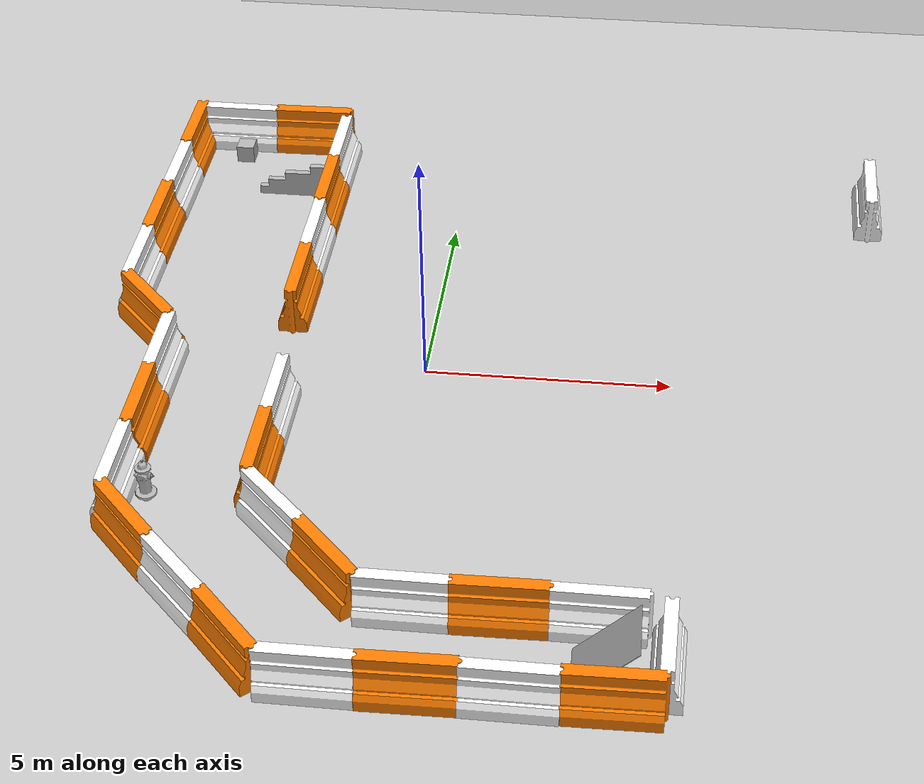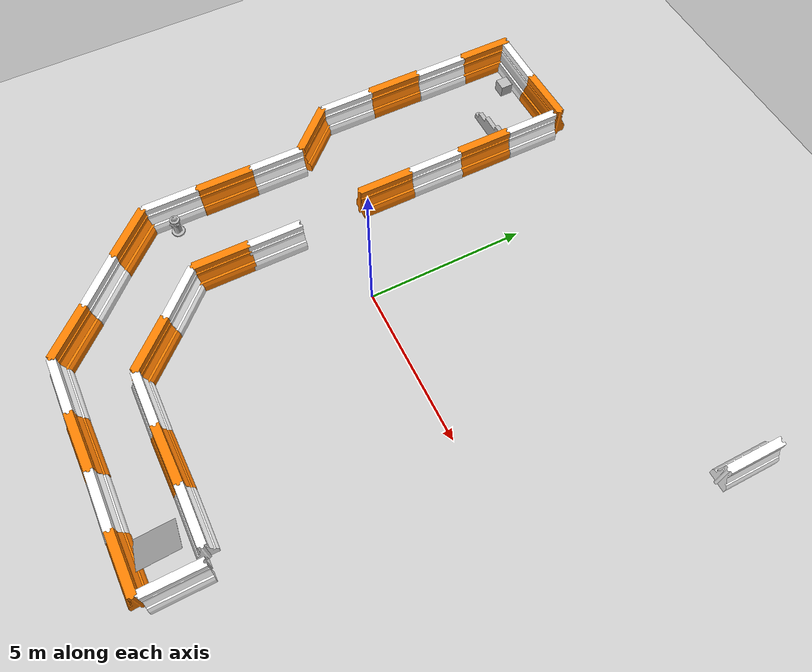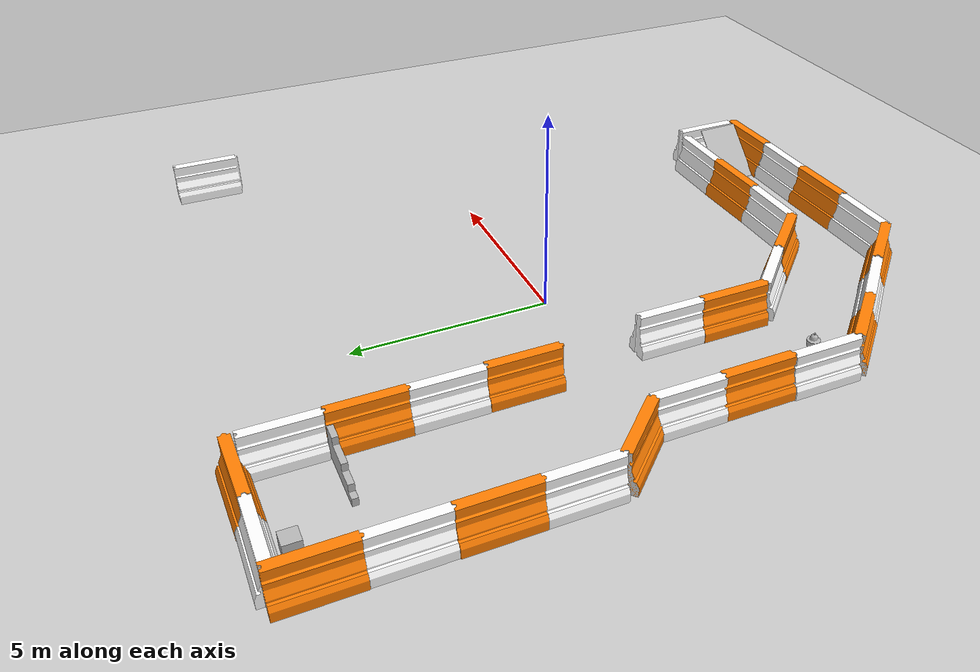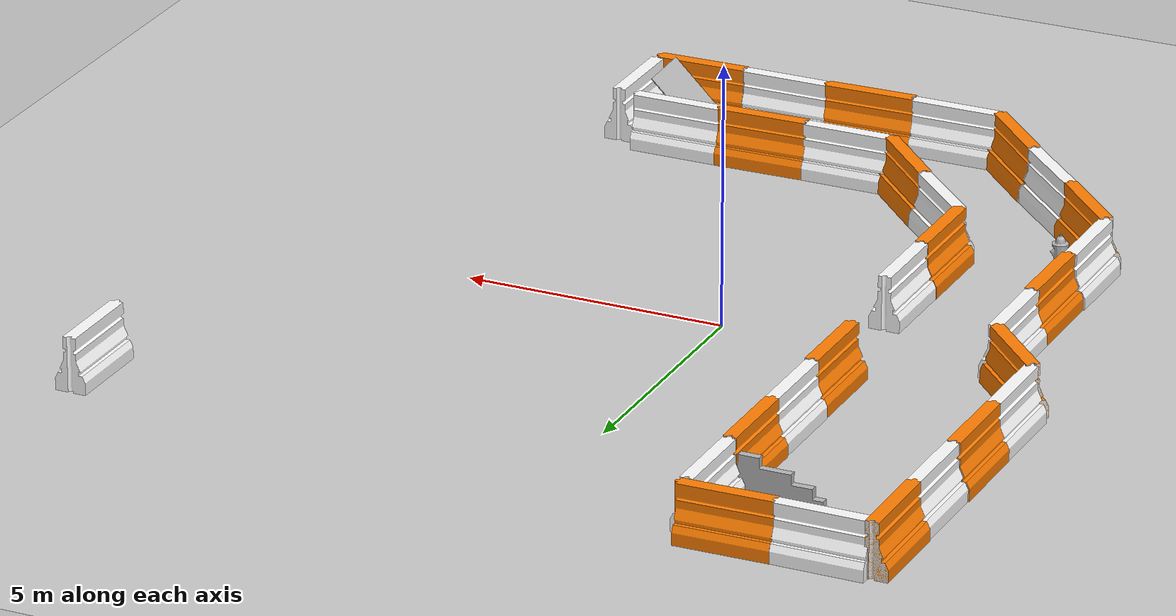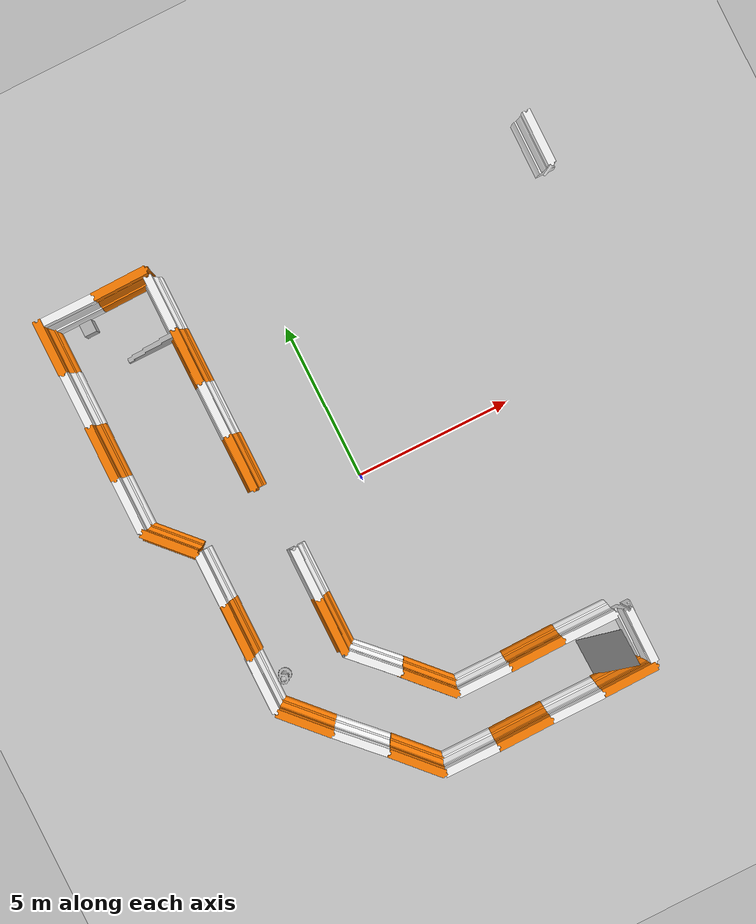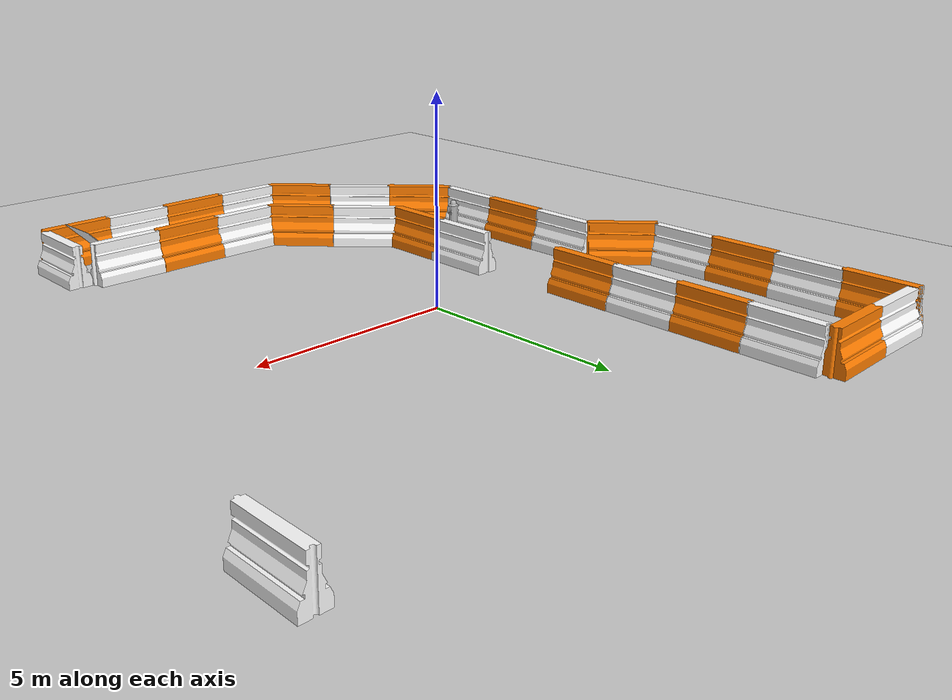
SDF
<sdf version="1.6">
 <world name="default">
  <light name="sun" type="directional">
   <pose>0 0 10 0 -0 0</pose>
   <diffuse>0.8 0.8 0.8 1</diffuse>
   <specular>0.1 0.1 0.1 1</specular>
   <attenuation>
    <range>1000</range>
    <constant>0.9</constant>
    <linear>0.01</linear>
    <quadratic>0.001</quadratic>
   </attenuation>
   <direction>-0.5 0.5 -1</direction>
  </light>
  <model name="ground_plane">
   <static>1</static>
   <link name="link">
    <collision name="collision">
     <geometry><plane><normal>0 0 1</normal><size>100 100</size></plane></geometry>
     <surface><friction><ode><mu>100</mu><mu2>50</mu2></ode></friction></surface>
    </collision>
    <visual name="visual">
     <cast_shadows>0</cast_shadows>
     <geometry><plane><normal>0 0 1</normal><size>100 100</size></plane></geometry>
     <material>
      <script><uri>file://media/materials/scripts/gazebo.material</uri><name>Gazebo/Grey</name></script>
     </material>
    </visual>
   </link>
  </model>
  <gravity>0 0 -9.8</gravity>
  <magnetic_field>6e-06 2.3e-05 -4.2e-05</magnetic_field>
  <atmosphere type="adiabatic"/>
  <physics name="default_physics" default="0" type="ode">
   <max_step_size>0.001</max_step_size>
   <real_time_factor>1</real_time_factor>
   <real_time_update_rate>1000</real_time_update_rate>
  </physics>
  <scene><ambient>0.4 0.4 0.4 1</ambient><background>0.7 0.7 0.7 1</background><shadows>1</shadows></scene>
  <spherical_coordinates>
   <surface_model>EARTH_WGS84</surface_model>
   <latitude_deg>0</latitude_deg>
   <longitude_deg>0</longitude_deg>
   <elevation>0</elevation>
   <heading_deg>0</heading_deg>
  </spherical_coordinates>
  <model name="drc_practice_white_jersey_barrier">
   <static>1</static>
   <link name="link">
    <visual name="visual">
     <geometry>
      <mesh>
       <uri>model://drc_practice_white_jersey_barrier/meshes/jersey_barrier.dae</uri>
       <scale>1 1 1</scale>
      </mesh>
     </geometry>
    </visual>
    <collision name="collision">
     <geometry>
      <mesh>
       <uri>model://drc_practice_white_jersey_barrier/meshes/jersey_barrier.dae</uri>
       <scale>1 1 1</scale>
      </mesh>
     </geometry>
    </collision>
   </link>
   <pose>9.15124 6.53092 0 0 -0 0</pose>
  </model>
  <model name="drc_practice_organge_jersey_barrier">
   <static>1</static>
   <link name="link">
    <visual name="visual">
     <geometry>
      <mesh>
       <uri>model://drc_practice_orange_jersey_barrier/meshes/jersey_barrier.dae</uri>
       <scale>1 1 1</scale>
      </mesh>
     </geometry>
    </visual>
    <collision name="collision">
     <geometry>
      <mesh>
       <uri>model://drc_practice_orange_jersey_barrier/meshes/jersey_barrier.dae</uri>
       <scale>1 1 1</scale>
      </mesh>
     </geometry>
    </collision>
   </link>
   <pose>-2.94993 1.92473 0 0 -0 0</pose>
  </model>
  <model name="drc_practice_white_jersey_barrier_0">
   <static>1</static>
   <link name="link">
    <visual name="visual">
     <geometry>
      <mesh>
       <uri>model://drc_practice_white_jersey_barrier/meshes/jersey_barrier.dae</uri>
       <scale>1 1 1</scale>
      </mesh>
     </geometry>
    </visual>
    <collision name="collision">
     <geometry>
      <mesh>
       <uri>model://drc_practice_white_jersey_barrier/meshes/jersey_barrier.dae</uri>
       <scale>1 1 1</scale>
      </mesh>
     </geometry>
    </collision>
   </link>
   <pose>-2.95544 3.68382 0 0 -0 0</pose>
  </model>
  <model name="drc_practice_organge_jersey_barrier_clone">
   <static>1</static>
   <link name="link">
    <visual name="visual">
     <geometry>
      <mesh>
       <uri>model://drc_practice_orange_jersey_barrier/meshes/jersey_barrier.dae</uri>
       <scale>1 1 1</scale>
      </mesh>
     </geometry>
    </visual>
    <collision name="collision">
     <geometry>
      <mesh>
       <uri>model://drc_practice_orange_jersey_barrier/meshes/jersey_barrier.dae</uri>
       <scale>1 1 1</scale>
      </mesh>
     </geometry>
    </collision>
   </link>
   <pose>-2.95998 5.42207 0 0 -0 0</pose>
  </model>
  <model name="drc_practice_white_jersey_barrier_0_clone">
   <static>1</static>
   <link name="link">
    <visual name="visual">
     <geometry>
      <mesh>
       <uri>model://drc_practice_white_jersey_barrier/meshes/jersey_barrier.dae</uri>
       <scale>1 1 1</scale>
      </mesh>
     </geometry>
    </visual>
    <collision name="collision">
     <geometry>
      <mesh>
       <uri>model://drc_practice_white_jersey_barrier/meshes/jersey_barrier.dae</uri>
       <scale>1 1 1</scale>
      </mesh>
     </geometry>
    </collision>
   </link>
   <pose>-2.95298 7.19072 0 0 -0 0</pose>
  </model>
  <model name="drc_practice_organge_jersey_barrier_clone_clone">
   <static>1</static>
   <link name="link">
    <visual name="visual">
     <geometry>
      <mesh>
       <uri>model://drc_practice_orange_jersey_barrier/meshes/jersey_barrier.dae</uri>
       <scale>1 1 1</scale>
      </mesh>
     </geometry>
    </visual>
    <collision name="collision">
     <geometry>
      <mesh>
       <uri>model://drc_practice_orange_jersey_barrier/meshes/jersey_barrier.dae</uri>
       <scale>1 1 1</scale>
      </mesh>
     </geometry>
    </collision>
   </link>
   <pose>-3.77501 8.22057 0 0 -0 1.59221</pose>
  </model>
  <model name="drc_practice_white_jersey_barrier_0_clone_0">
   <static>1</static>
   <link name="link">
    <visual name="visual">
     <geometry>
      <mesh>
       <uri>model://drc_practice_white_jersey_barrier/meshes/jersey_barrier.dae</uri>
       <scale>1 1 1</scale>
      </mesh>
     </geometry>
    </visual>
    <collision name="collision">
     <geometry>
      <mesh>
       <uri>model://drc_practice_white_jersey_barrier/meshes/jersey_barrier.dae</uri>
       <scale>1 1 1</scale>
      </mesh>
     </geometry>
    </collision>
   </link>
   <pose>-5.49731 8.2055 0 0 -0 1.57155</pose>
  </model>
  <model name="drc_practice_organge_jersey_barrier_clone_clone_0">
   <static>1</static>
   <link name="link">
    <visual name="visual">
     <geometry>
      <mesh>
       <uri>model://drc_practice_orange_jersey_barrier/meshes/jersey_barrier.dae</uri>
       <scale>1 1 1</scale>
      </mesh>
     </geometry>
    </visual>
    <collision name="collision">
     <geometry>
      <mesh>
       <uri>model://drc_practice_orange_jersey_barrier/meshes/jersey_barrier.dae</uri>
       <scale>1 1 1</scale>
      </mesh>
     </geometry>
    </collision>
   </link>
   <pose>-6.44272 7.45782 0 0 -0 0</pose>
  </model>
  <model name="drc_practice_white_jersey_barrier_0_clone_1">
   <static>1</static>
   <link name="link">
    <visual name="visual">
     <geometry>
      <mesh>
       <uri>model://drc_practice_white_jersey_barrier/meshes/jersey_barrier.dae</uri>
       <scale>1 1 1</scale>
      </mesh>
     </geometry>
    </visual>
    <collision name="collision">
     <geometry>
      <mesh>
       <uri>model://drc_practice_white_jersey_barrier/meshes/jersey_barrier.dae</uri>
       <scale>1 1 1</scale>
      </mesh>
     </geometry>
    </collision>
   </link>
   <pose>-6.43986 5.73199 0 0 -0 0</pose>
  </model>
  <model name="drc_practice_organge_jersey_barrier_clone_clone_1">
   <static>1</static>
   <link name="link">
    <visual name="visual">
     <geometry>
      <mesh>
       <uri>model://drc_practice_orange_jersey_barrier/meshes/jersey_barrier.dae</uri>
       <scale>1 1 1</scale>
      </mesh>
     </geometry>
    </visual>
    <collision name="collision">
     <geometry>
      <mesh>
       <uri>model://drc_practice_orange_jersey_barrier/meshes/jersey_barrier.dae</uri>
       <scale>1 1 1</scale>
      </mesh>
     </geometry>
    </collision>
   </link>
   <pose>-6.46789 4.00159 0 0 -0 0</pose>
  </model>
  <model name="drc_practice_white_jersey_barrier_0_clone_2">
   <static>1</static>
   <link name="link">
    <visual name="visual">
     <geometry>
      <mesh>
       <uri>model://drc_practice_white_jersey_barrier/meshes/jersey_barrier.dae</uri>
       <scale>1 1 1</scale>
      </mesh>
     </geometry>
    </visual>
    <collision name="collision">
     <geometry>
      <mesh>
       <uri>model://drc_practice_white_jersey_barrier/meshes/jersey_barrier.dae</uri>
       <scale>1 1 1</scale>
      </mesh>
     </geometry>
    </collision>
   </link>
   <pose>-6.47226 2.27049 0 0 -0 0</pose>
  </model>
  <model name="drc_practice_organge_jersey_barrier_clone_clone_1_clone">
   <static>1</static>
   <link name="link">
    <visual name="visual">
     <geometry>
      <mesh>
       <uri>model://drc_practice_orange_jersey_barrier/meshes/jersey_barrier.dae</uri>
       <scale>1 1 1</scale>
      </mesh>
     </geometry>
    </visual>
    <collision name="collision">
     <geometry>
      <mesh>
       <uri>model://drc_practice_orange_jersey_barrier/meshes/jersey_barrier.dae</uri>
       <scale>1 1 1</scale>
      </mesh>
     </geometry>
    </collision>
   </link>
   <pose>-5.90329 0.753645 0 0 -0 0.755436</pose>
  </model>
  <model name="drc_practice_white_jersey_barrier_0_clone_2_clone">
   <static>1</static>
   <link name="link">
    <visual name="visual">
     <geometry>
      <mesh>
       <uri>model://drc_practice_white_jersey_barrier/meshes/jersey_barrier.dae</uri>
       <scale>1 1 1</scale>
      </mesh>
     </geometry>
    </visual>
    <collision name="collision">
     <geometry>
      <mesh>
       <uri>model://drc_practice_white_jersey_barrier/meshes/jersey_barrier.dae</uri>
       <scale>1 1 1</scale>
      </mesh>
     </geometry>
    </collision>
   </link>
   <pose>-5.27597 -0.744491 0 0 -0 0</pose>
  </model>
  <model name="drc_practice_organge_jersey_barrier_clone_0">
   <static>1</static>
   <link name="link">
    <visual name="visual">
     <geometry>
      <mesh>
       <uri>model://drc_practice_orange_jersey_barrier/meshes/jersey_barrier.dae</uri>
       <scale>1 1 1</scale>
      </mesh>
     </geometry>
    </visual>
    <collision name="collision">
     <geometry>
      <mesh>
       <uri>model://drc_practice_orange_jersey_barrier/meshes/jersey_barrier.dae</uri>
       <scale>1 1 1</scale>
      </mesh>
     </geometry>
    </collision>
   </link>
   <pose>-5.27134 -2.46592 0 0 -0 0</pose>
  </model>
  <model name="drc_practice_white_jersey_barrier_0_clone_2_clone_clone">
   <static>1</static>
   <link name="link">
    <visual name="visual">
     <geometry>
      <mesh>
       <uri>model://drc_practice_white_jersey_barrier/meshes/jersey_barrier.dae</uri>
       <scale>1 1 1</scale>
      </mesh>
     </geometry>
    </visual>
    <collision name="collision">
     <geometry>
      <mesh>
       <uri>model://drc_practice_white_jersey_barrier/meshes/jersey_barrier.dae</uri>
       <scale>1 1 1</scale>
      </mesh>
     </geometry>
    </collision>
   </link>
   <pose>-2.69663 -1.88756 0 0 -0 0</pose>
  </model>
  <model name="drc_practice_organge_jersey_barrier_clone_0_clone">
   <static>1</static>
   <link name="link">
    <visual name="visual">
     <geometry>
      <mesh>
       <uri>model://drc_practice_orange_jersey_barrier/meshes/jersey_barrier.dae</uri>
       <scale>1 1 1</scale>
      </mesh>
     </geometry>
    </visual>
    <collision name="collision">
     <geometry>
      <mesh>
       <uri>model://drc_practice_orange_jersey_barrier/meshes/jersey_barrier.dae</uri>
       <scale>1 1 1</scale>
      </mesh>
     </geometry>
    </collision>
   </link>
   <pose>-2.70962 -3.56818 0 0 -0 0</pose>
  </model>
  <model name="drc_practice_white_jersey_barrier_0_clone_2_clone_clone_clone">
   <static>1</static>
   <link name="link">
    <visual name="visual">
     <geometry>
      <mesh>
       <uri>model://drc_practice_white_jersey_barrier/meshes/jersey_barrier.dae</uri>
       <scale>1 1 1</scale>
      </mesh>
     </geometry>
    </visual>
    <collision name="collision">
     <geometry>
      <mesh>
       <uri>model://drc_practice_white_jersey_barrier/meshes/jersey_barrier.dae</uri>
       <scale>1 1 1</scale>
      </mesh>
     </geometry>
    </collision>
   </link>
   <pose>-5.31011 -4.2178 0 0 -0 0</pose>
  </model>
  <model name="drc_practice_organge_jersey_barrier_clone_clone_1_clone_clone">
   <static>1</static>
   <link name="link">
    <visual name="visual">
     <geometry>
      <mesh>
       <uri>model://drc_practice_orange_jersey_barrier/meshes/jersey_barrier.dae</uri>
       <scale>1 1 1</scale>
      </mesh>
     </geometry>
    </visual>
    <collision name="collision">
     <geometry>
      <mesh>
       <uri>model://drc_practice_orange_jersey_barrier/meshes/jersey_barrier.dae</uri>
       <scale>1 1 1</scale>
      </mesh>
     </geometry>
    </collision>
   </link>
   <pose>-4.71576 -5.74186 0 0 -0 0.755436</pose>
  </model>
  <model name="drc_practice_white_jersey_barrier_0_clone_2_clone_clone_clone_0">
   <static>1</static>
   <link name="link">
    <visual name="visual">
     <geometry>
      <mesh>
       <uri>model://drc_practice_white_jersey_barrier/meshes/jersey_barrier.dae</uri>
       <scale>1 1 1</scale>
      </mesh>
     </geometry>
    </visual>
    <collision name="collision">
     <geometry>
      <mesh>
       <uri>model://drc_practice_white_jersey_barrier/meshes/jersey_barrier.dae</uri>
       <scale>1 1 1</scale>
      </mesh>
     </geometry>
    </collision>
   </link>
   <pose>-3.51128 -7.00347 0 0 -0 0.779136</pose>
  </model>
  <model name="drc_practice_organge_jersey_barrier_clone_clone_1_clone_clone_clone">
   <static>1</static>
   <link name="link">
    <visual name="visual">
     <geometry>
      <mesh>
       <uri>model://drc_practice_orange_jersey_barrier/meshes/jersey_barrier.dae</uri>
       <scale>1 1 1</scale>
      </mesh>
     </geometry>
    </visual>
    <collision name="collision">
     <geometry>
      <mesh>
       <uri>model://drc_practice_orange_jersey_barrier/meshes/jersey_barrier.dae</uri>
       <scale>1 1 1</scale>
      </mesh>
     </geometry>
    </collision>
   </link>
   <pose>-2.29132 -8.27363 0 0 -0 0.755436</pose>
  </model>
  <model name="drc_practice_white_jersey_barrier_0_clone_2_clone_clone_clone_0_clone">
   <static>1</static>
   <link name="link">
    <visual name="visual">
     <geometry>
      <mesh>
       <uri>model://drc_practice_white_jersey_barrier/meshes/jersey_barrier.dae</uri>
       <scale>1 1 1</scale>
      </mesh>
     </geometry>
    </visual>
    <collision name="collision">
     <geometry>
      <mesh>
       <uri>model://drc_practice_white_jersey_barrier/meshes/jersey_barrier.dae</uri>
       <scale>1 1 1</scale>
      </mesh>
     </geometry>
    </collision>
   </link>
   <pose>-2.11077 -5.0772 0 0 -0 0.779136</pose>
  </model>
  <model name="drc_practice_organge_jersey_barrier_clone_clone_1_clone_clone_clone_0">
   <static>1</static>
   <link name="link">
    <visual name="visual">
     <geometry>
      <mesh>
       <uri>model://drc_practice_orange_jersey_barrier/meshes/jersey_barrier.dae</uri>
       <scale>1 1 1</scale>
      </mesh>
     </geometry>
    </visual>
    <collision name="collision">
     <geometry>
      <mesh>
       <uri>model://drc_practice_orange_jersey_barrier/meshes/jersey_barrier.dae</uri>
       <scale>1 1 1</scale>
      </mesh>
     </geometry>
    </collision>
   </link>
   <pose>-0.90361 -6.35116 0 0 -0 0.755436</pose>
  </model>
  <model name="drc_practice_white_jersey_barrier_0_clone_0_clone">
   <static>1</static>
   <link name="link">
    <visual name="visual">
     <geometry>
      <mesh>
       <uri>model://drc_practice_white_jersey_barrier/meshes/jersey_barrier.dae</uri>
       <scale>1 1 1</scale>
      </mesh>
     </geometry>
    </visual>
    <collision name="collision">
     <geometry>
      <mesh>
       <uri>model://drc_practice_white_jersey_barrier/meshes/jersey_barrier.dae</uri>
       <scale>1 1 1</scale>
      </mesh>
     </geometry>
    </collision>
   </link>
   <pose>-0.827401 -8.9128 0 0 -0 1.57155</pose>
  </model>
  <model name="drc_practice_white_jersey_barrier_0_clone_0_clone_0">
   <static>1</static>
   <link name="link">
    <visual name="visual">
     <geometry>
      <mesh>
       <uri>model://drc_practice_white_jersey_barrier/meshes/jersey_barrier.dae</uri>
       <scale>1 1 1</scale>
      </mesh>
     </geometry>
    </visual>
    <collision name="collision">
     <geometry>
      <mesh>
       <uri>model://drc_practice_white_jersey_barrier/meshes/jersey_barrier.dae</uri>
       <scale>1 1 1</scale>
      </mesh>
     </geometry>
    </collision>
   </link>
   <pose>0.563858 -6.99406 0 0 -0 1.57155</pose>
  </model>
  <model name="drc_practice_organge_jersey_barrier_clone_clone_clone">
   <static>1</static>
   <link name="link">
    <visual name="visual">
     <geometry>
      <mesh>
       <uri>model://drc_practice_orange_jersey_barrier/meshes/jersey_barrier.dae</uri>
       <scale>1 1 1</scale>
      </mesh>
     </geometry>
    </visual>
    <collision name="collision">
     <geometry>
      <mesh>
       <uri>model://drc_practice_orange_jersey_barrier/meshes/jersey_barrier.dae</uri>
       <scale>1 1 1</scale>
      </mesh>
     </geometry>
    </collision>
   </link>
   <pose>0.926041 -8.91105 0 0 -0 1.59221</pose>
  </model>
  <model name="drc_practice_organge_jersey_barrier_clone_clone_clone_0">
   <static>1</static>
   <link name="link">
    <visual name="visual">
     <geometry>
      <mesh>
       <uri>model://drc_practice_orange_jersey_barrier/meshes/jersey_barrier.dae</uri>
       <scale>1 1 1</scale>
      </mesh>
     </geometry>
    </visual>
    <collision name="collision">
     <geometry>
      <mesh>
       <uri>model://drc_practice_orange_jersey_barrier/meshes/jersey_barrier.dae</uri>
       <scale>1 1 1</scale>
      </mesh>
     </geometry>
    </collision>
   </link>
   <pose>2.28401 -6.98539 0 0 -0 1.59221</pose>
  </model>
  <model name="drc_practice_white_jersey_barrier_0_clone_0_clone_0_clone">
   <static>1</static>
   <link name="link">
    <visual name="visual">
     <geometry>
      <mesh>
       <uri>model://drc_practice_white_jersey_barrier/meshes/jersey_barrier.dae</uri>
       <scale>1 1 1</scale>
      </mesh>
     </geometry>
    </visual>
    <collision name="collision">
     <geometry>
      <mesh>
       <uri>model://drc_practice_white_jersey_barrier/meshes/jersey_barrier.dae</uri>
       <scale>1 1 1</scale>
      </mesh>
     </geometry>
    </collision>
   </link>
   <pose>2.6599 -8.9081 0 0 -0 1.57155</pose>
  </model>
  <model name="drc_practice_white_jersey_barrier_0_clone_0_clone_0_clone_0">
   <static>1</static>
   <link name="link">
    <visual name="visual">
     <geometry>
      <mesh>
       <uri>model://drc_practice_white_jersey_barrier/meshes/jersey_barrier.dae</uri>
       <scale>1 1 1</scale>
      </mesh>
     </geometry>
    </visual>
    <collision name="collision">
     <geometry>
      <mesh>
       <uri>model://drc_practice_white_jersey_barrier/meshes/jersey_barrier.dae</uri>
       <scale>1 1 1</scale>
      </mesh>
     </geometry>
    </collision>
   </link>
   <pose>4.0319 -6.97688 0 0 -0 1.57155</pose>
  </model>
  <model name="drc_practice_organge_jersey_barrier_clone_clone_clone_0_clone">
   <static>1</static>
   <link name="link">
    <visual name="visual">
     <geometry>
      <mesh>
       <uri>model://drc_practice_orange_jersey_barrier/meshes/jersey_barrier.dae</uri>
       <scale>1 1 1</scale>
      </mesh>
     </geometry>
    </visual>
    <collision name="collision">
     <geometry>
      <mesh>
       <uri>model://drc_practice_orange_jersey_barrier/meshes/jersey_barrier.dae</uri>
       <scale>1 1 1</scale>
      </mesh>
     </geometry>
    </collision>
   </link>
   <pose>4.38811 -8.88212 0 0 -0 1.59221</pose>
  </model>
  <model name="drc_practice_white_jersey_barrier_0_clone_2_clone_clone_0">
   <static>1</static>
   <link name="link">
    <visual name="visual">
     <geometry>
      <mesh>
       <uri>model://drc_practice_white_jersey_barrier/meshes/jersey_barrier.dae</uri>
       <scale>1 1 1</scale>
      </mesh>
     </geometry>
    </visual>
    <collision name="collision">
     <geometry>
      <mesh>
       <uri>model://drc_practice_white_jersey_barrier/meshes/jersey_barrier.dae</uri>
       <scale>1 1 1</scale>
      </mesh>
     </geometry>
    </collision>
   </link>
   <pose>5.27848 -7.88319 0 0 -0 0</pose>
  </model>
  <model name="cardboard_box">
   <pose>-5.30601 7.62615 0.149 0 -0 0</pose>
   <link name="link">
    <inertial>
     <mass>2</mass>
     <inertia>
      <ixx>0.0416667</ixx>
      <ixy>0</ixy>
      <ixz>0</ixz>
      <iyy>0.0566667</iyy>
      <iyz>0</iyz>
      <izz>0.0683333</izz>
     </inertia>
    </inertial>
    <collision name="collision">
     <geometry><box><size>0.5 0.4 0.3</size></box></geometry>
     <surface>
      <friction><ode><mu>1</mu><mu2>1</mu2></ode></friction>
      <contact><ode><kp>1e+07</kp><kd>1</kd><min_depth>0.001</min_depth><max_vel>0.1</max_vel></ode></contact>
     </surface>
    </collision>
    <visual name="visual">
     <pose>0 0 -0.15 0 -0 0</pose>
     <geometry>
      <mesh><uri>model://cardboard_box/meshes/cardboard_box.dae</uri><scale>1 1 1</scale></mesh>
     </geometry>
    </visual>
   </link>
  </model>
  <model name="block_wall">
   <pose>-3.75328 6.2377 0.30924 0 -0 0</pose>
   <static>1</static>
   <link name="blocks">
    <collision name="collision">
     <geometry>
      <mesh><uri>model://drc_practice_block_wall/meshes/block_wall.dae</uri><scale>1 1 1</scale></mesh>
     </geometry>
     <surface>
      <bounce><restitution_coefficient>0</restitution_coefficient><threshold>100000</threshold></bounce>
      <friction><ode><mu>100</mu><mu2>50</mu2></ode></friction>
      <contact>
       <ode><soft_cfm>0</soft_cfm><soft_erp>0.2</soft_erp><max_vel>0</max_vel><min_depth>0</min_depth></ode>
      </contact>
     </surface>
    </collision>
    <visual name="visual">
     <geometry>
      <mesh><uri>model://drc_practice_block_wall/meshes/block_wall.dae</uri><scale>1 1 1</scale></mesh>
     </geometry>
    </visual>
   </link>
  </model>
  <model name="fire_hydrant">
   <static>1</static>
   <link name="link">
    <collision name="collision">
     <geometry><mesh><uri>model://fire_hydrant/meshes/fire_hydrant.dae</uri><scale>1 1 1</scale></mesh></geometry>
    </collision>
    <visual name="visual">
     <geometry><mesh><uri>model://fire_hydrant/meshes/fire_hydrant.dae</uri><scale>1 1 1</scale></mesh></geometry>
    </visual>
   </link>
   <pose>-4.72671 -4.35258 0 0 -0 0</pose>
  </model>
  <model name="nist_simple_ramp_120">
   <static>1</static>
   <link name="nist_simple_ramp_120_link">
    <collision name="collision">
     <geometry>
      <mesh><uri>model://nist_simple_ramp_120/meshes/nist_simple_ramp_120.dae</uri><scale>1 1 1</scale></mesh>
     </geometry>
    </collision>
    <visual name="visual">
     <geometry>
      <mesh><uri>model://nist_simple_ramp_120/meshes/nist_simple_ramp_120.dae</uri><scale>1 1 1</scale></mesh>
     </geometry>
    </visual>
   </link>
   <pose>4.20914 -8.00683 0 0 0 -1.54256</pose>
  </model>
 </world>
</sdf>
